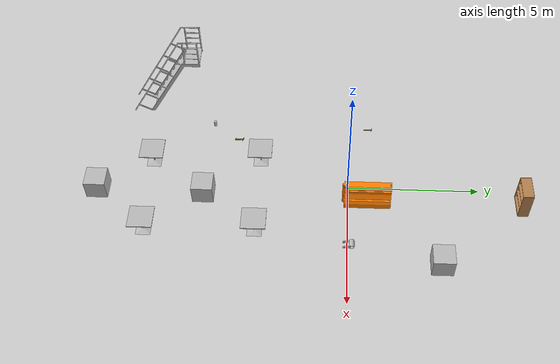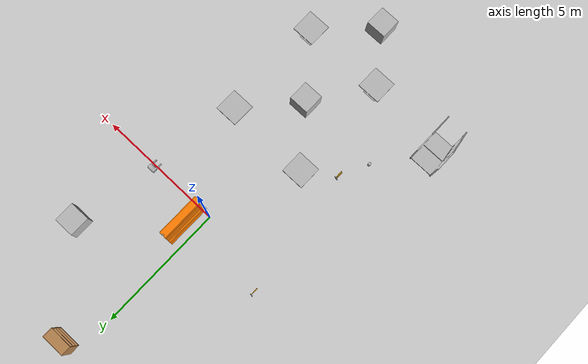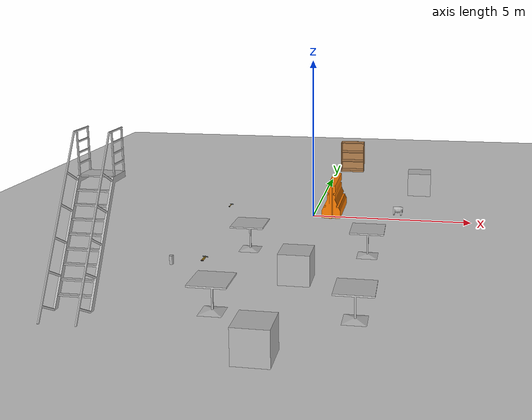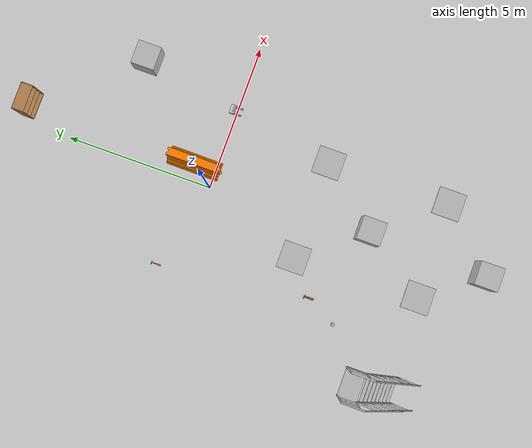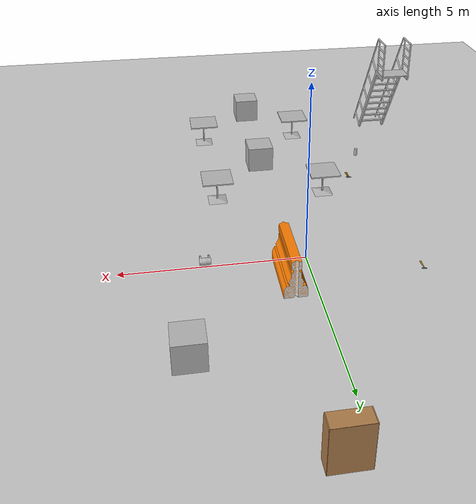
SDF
<sdf version="1.6">
 <world name="default">
  <light name="sun" type="directional">
   <pose>0 0 10 0 -0 0</pose>
   <diffuse>0.8 0.8 0.8 1</diffuse>
   <specular>0.1 0.1 0.1 1</specular>
   <attenuation>
    <range>1000</range>
    <constant>0.9</constant>
    <linear>0.01</linear>
    <quadratic>0.001</quadratic>
   </attenuation>
   <direction>-0.5 0.5 -1</direction>
  </light>
  <model name="ground_plane">
   <static>1</static>
   <link name="link">
    <collision name="collision">
     <geometry><plane><normal>0 0 1</normal><size>100 100</size></plane></geometry>
     <surface><friction><ode><mu>100</mu><mu2>50</mu2></ode></friction></surface>
    </collision>
    <visual name="visual">
     <cast_shadows>0</cast_shadows>
     <geometry><plane><normal>0 0 1</normal><size>100 100</size></plane></geometry>
     <material>
      <script><uri>file://media/materials/scripts/gazebo.material</uri><name>Gazebo/Grey</name></script>
     </material>
    </visual>
   </link>
  </model>
  <gravity>0 0 -9.8</gravity>
  <magnetic_field>6e-06 2.3e-05 -4.2e-05</magnetic_field>
  <atmosphere type="adiabatic"/>
  <physics name="default_physics" default="0" type="ode">
   <max_step_size>0.001</max_step_size>
   <real_time_factor>1</real_time_factor>
   <real_time_update_rate>1000</real_time_update_rate>
  </physics>
  <scene><ambient>0.4 0.4 0.4 1</ambient><background>0.7 0.7 0.7 1</background><shadows>1</shadows></scene>
  <spherical_coordinates>
   <surface_model>EARTH_WGS84</surface_model>
   <latitude_deg>0</latitude_deg>
   <longitude_deg>0</longitude_deg>
   <elevation>0</elevation>
   <heading_deg>0</heading_deg>
  </spherical_coordinates>
  <model name="cafe_table">
   <static>1</static>
   <link name="link">
    <collision name="surface">
     <pose>0 0 0.755 0 -0 0</pose>
     <geometry><box><size>0.913 0.913 0.04</size></box></geometry>
    </collision>
    <collision name="column">
     <pose>0 0 0.37 0 -0 0</pose>
     <geometry><box><size>0.042 0.042 0.74</size></box></geometry>
    </collision>
    <collision name="base">
     <pose>0 0 0.02 0 -0 0</pose>
     <geometry><box><size>0.56 0.56 0.04</size></box></geometry>
    </collision>
    <visual name="visual">
     <geometry><mesh><uri>model://cafe_table/meshes/cafe_table.dae</uri></mesh></geometry>
    </visual>
   </link>
   <pose>2.07942 -7.54445 0 0 -0 0</pose>
  </model>
  <model name="cafe_table_0">
   <static>1</static>
   <link name="link">
    <collision name="surface">
     <pose>0 0 0.755 0 -0 0</pose>
     <geometry><box><size>0.913 0.913 0.04</size></box></geometry>
    </collision>
    <collision name="column">
     <pose>0 0 0.37 0 -0 0</pose>
     <geometry><box><size>0.042 0.042 0.74</size></box></geometry>
    </collision>
    <collision name="base">
     <pose>0 0 0.02 0 -0 0</pose>
     <geometry><box><size>0.56 0.56 0.04</size></box></geometry>
    </collision>
    <visual name="visual">
     <geometry><mesh><uri>model://cafe_table/meshes/cafe_table.dae</uri></mesh></geometry>
    </visual>
   </link>
   <pose>-1.12178 -7.58031 0 0 -0 0</pose>
  </model>
  <model name="cafe_table_1">
   <static>1</static>
   <link name="link">
    <collision name="surface">
     <pose>0 0 0.755 0 -0 0</pose>
     <geometry><box><size>0.913 0.913 0.04</size></box></geometry>
    </collision>
    <collision name="column">
     <pose>0 0 0.37 0 -0 0</pose>
     <geometry><box><size>0.042 0.042 0.74</size></box></geometry>
    </collision>
    <collision name="base">
     <pose>0 0 0.02 0 -0 0</pose>
     <geometry><box><size>0.56 0.56 0.04</size></box></geometry>
    </collision>
    <visual name="visual">
     <geometry><mesh><uri>model://cafe_table/meshes/cafe_table.dae</uri></mesh></geometry>
    </visual>
   </link>
   <pose>2.0244 -3.43443 0 0 -0 0</pose>
  </model>
  <model name="cafe_table_2">
   <static>1</static>
   <link name="link">
    <collision name="surface">
     <pose>0 0 0.755 0 -0 0</pose>
     <geometry><box><size>0.913 0.913 0.04</size></box></geometry>
    </collision>
    <collision name="column">
     <pose>0 0 0.37 0 -0 0</pose>
     <geometry><box><size>0.042 0.042 0.74</size></box></geometry>
    </collision>
    <collision name="base">
     <pose>0 0 0.02 0 -0 0</pose>
     <geometry><box><size>0.56 0.56 0.04</size></box></geometry>
    </collision>
    <visual name="visual">
     <geometry><mesh><uri>model://cafe_table/meshes/cafe_table.dae</uri></mesh></geometry>
    </visual>
   </link>
   <pose>-1.26399 -3.39292 0 0 -0 0</pose>
  </model>
  <model name="number1">
   <pose>0.411726 -5.47513 0.4 0 -0 0</pose>
   <static>1</static>
   <link name="link">
    <visual name="visual">
     <geometry><mesh><uri>model://number1/meshes/number.dae</uri></mesh></geometry>
     <material>
      <script>
       <uri>model://number1/materials/scripts</uri>
       <uri>model://number1/materials/textures</uri>
       <name>Number/One</name>
      </script>
     </material>
    </visual>
   </link>
  </model>
  <model name="number2">
   <pose>0.3097 -9.52457 0.4 0 -0 0</pose>
   <static>1</static>
   <link name="link">
    <visual name="visual">
     <geometry><mesh><uri>model://number1/meshes/number.dae</uri></mesh></geometry>
     <material>
      <script>
       <uri>model://number2/materials/scripts</uri>
       <uri>model://number2/materials/textures</uri>
       <name>Number/Two</name>
      </script>
     </material>
    </visual>
   </link>
  </model>
  <model name="beer">
   <link name="link">
    <pose>0 0 0.115 0 -0 0</pose>
    <inertial>
     <mass>0.39</mass>
     <inertia><ixx>0.00058</ixx><ixy>0</ixy><ixz>0</ixz><iyy>0.00058</iyy><iyz>0</iyz><izz>0.00019</izz></inertia>
    </inertial>
    <collision name="collision">
     <geometry><cylinder><radius>0.055</radius><length>0.23</length></cylinder></geometry>
    </collision>
    <visual name="visual">
     <geometry><cylinder><radius>0.055</radius><length>0.23</length></cylinder></geometry>
     <material>
      <script>
       <uri>model://beer/materials/scripts</uri>
       <uri>model://beer/materials/textures</uri>
       <name>Beer/Diffuse</name>
      </script>
     </material>
    </visual>
   </link>
   <pose>-2.87544 -5.32991 0.189806 2.4e-05 0.00011 -2.5e-05</pose>
  </model>
  <model name="hammer">
   <static>1</static>
   <link name="link">
    <collision name="collision">
     <geometry><mesh><uri>model://hammer/meshes/hammer.dae</uri></mesh></geometry>
    </collision>
    <visual name="visual"><geometry><mesh><uri>model://hammer/meshes/hammer.dae</uri></mesh></geometry></visual>
   </link>
   <pose>-2.32473 -4.27363 0 0 -0 0</pose>
  </model>
  <model name="hammer_0">
   <static>1</static>
   <link name="link">
    <collision name="collision">
     <geometry><mesh><uri>model://hammer/meshes/hammer.dae</uri></mesh></geometry>
    </collision>
    <visual name="visual"><geometry><mesh><uri>model://hammer/meshes/hammer.dae</uri></mesh></geometry></visual>
   </link>
   <pose>-2.35764 -4.25325 0 0 -0 0</pose>
  </model>
  <model name="hammer_1">
   <static>1</static>
   <link name="link">
    <collision name="collision">
     <geometry><mesh><uri>model://hammer/meshes/hammer.dae</uri></mesh></geometry>
    </collision>
    <visual name="visual"><geometry><mesh><uri>model://hammer/meshes/hammer.dae</uri></mesh></geometry></visual>
   </link>
   <pose>-2.9954 0.894254 0 0 -0 0</pose>
  </model>
  <model name="arm_part">
   <link name="link">
    <inertial>
     <pose>0 -0.12223 0.101835 0 -0 0</pose>
     <mass>0.5</mass>
     <inertia>
      <ixx>0.00950655</ixx>
      <ixy>0</ixy>
      <ixz>0</ixz>
      <iyy>0.00543452</iyy>
      <iyz>0</iyz>
      <izz>0.0114843</izz>
     </inertia>
    </inertial>
    <collision name="collision">
     <pose>0 -0.12223 0.101835 0 -0 0</pose>
     <geometry><box><size>0.29824 0.43206 0.20367</size></box></geometry>
    </collision>
    <visual name="visual">
     <geometry><mesh><uri>model://arm_part/meshes/arm.dae</uri></mesh></geometry>
     <material>
      <script>
       <uri>model://arm_part/materials/scripts</uri>
       <uri>model://arm_part/materials/textures</uri>
       <name>ArmPart/Diffuse</name>
      </script>
     </material>
    </visual>
   </link>
   <pose>2.70928 0.168692 0.1898 0 -0 0</pose>
  </model>
  <model name="number3">
   <pose>3.35383 3.40189 0.4 0 -0 0</pose>
   <static>1</static>
   <link name="link">
    <visual name="visual">
     <geometry><mesh><uri>model://number1/meshes/number.dae</uri></mesh></geometry>
     <material>
      <script>
       <uri>model://number3/materials/scripts</uri>
       <uri>model://number3/materials/textures</uri>
       <name>Number/Three</name>
      </script>
     </material>
    </visual>
   </link>
  </model>
  <model name="bookshelf">
   <static>1</static>
   <link name="link">
    <inertial><mass>1</mass></inertial>
    <collision name="back">
     <pose>0 0.005 0.6 0 -0 0</pose>
     <geometry><box><size>0.9 0.01 1.2</size></box></geometry>
    </collision>
    <visual name="visual1">
     <pose>0 0.005 0.6 0 -0 0</pose>
     <geometry><box><size>0.9 0.01 1.2</size></box></geometry>
     <material>
      <script><uri>file://media/materials/scripts/gazebo.material</uri><name>Gazebo/Wood</name></script>
     </material>
    </visual>
    <collision name="left_side">
     <pose>0.45 -0.195 0.6 0 -0 0</pose>
     <geometry><box><size>0.02 0.4 1.2</size></box></geometry>
    </collision>
    <visual name="visual2">
     <pose>0.45 -0.195 0.6 0 -0 0</pose>
     <geometry><box><size>0.02 0.4 1.2</size></box></geometry>
     <material>
      <script><uri>file://media/materials/scripts/gazebo.material</uri><name>Gazebo/Wood</name></script>
     </material>
    </visual>
    <collision name="right_side">
     <pose>-0.45 -0.195 0.6 0 -0 0</pose>
     <geometry><box><size>0.02 0.4 1.2</size></box></geometry>
    </collision>
    <visual name="visual3">
     <pose>-0.45 -0.195 0.6 0 -0 0</pose>
     <geometry><box><size>0.02 0.4 1.2</size></box></geometry>
     <material>
      <script><uri>file://media/materials/scripts/gazebo.material</uri><name>Gazebo/Wood</name></script>
     </material>
    </visual>
    <collision name="bottom">
     <pose>0 -0.195 0.03 0 -0 0</pose>
     <geometry><box><size>0.88 0.4 0.06</size></box></geometry>
    </collision>
    <visual name="visual4">
     <pose>0 -0.195 0.03 0 -0 0</pose>
     <geometry><box><size>0.88 0.4 0.06</size></box></geometry>
     <material>
      <script><uri>file://media/materials/scripts/gazebo.material</uri><name>Gazebo/Wood</name></script>
     </material>
    </visual>
    <collision name="top">
     <pose>0 -0.195 1.19 0 -0 0</pose>
     <geometry><box><size>0.88 0.4 0.02</size></box></geometry>
    </collision>
    <visual name="visual5">
     <pose>0 -0.195 1.19 0 -0 0</pose>
     <geometry><box><size>0.88 0.4 0.02</size></box></geometry>
     <material>
      <script><uri>file://media/materials/scripts/gazebo.material</uri><name>Gazebo/Wood</name></script>
     </material>
    </visual>
    <collision name="low_shelf">
     <pose>0 -0.195 0.43 0 -0 0</pose>
     <geometry><box><size>0.88 0.4 0.02</size></box></geometry>
    </collision>
    <visual name="visual6">
     <pose>0 -0.195 0.43 0 -0 0</pose>
     <geometry><box><size>0.88 0.4 0.02</size></box></geometry>
     <material>
      <script><uri>file://media/materials/scripts/gazebo.material</uri><name>Gazebo/Wood</name></script>
     </material>
    </visual>
    <collision name="high_shelf">
     <pose>0 -0.195 0.8 0 -0 0</pose>
     <geometry><box><size>0.88 0.4 0.02</size></box></geometry>
    </collision>
    <visual name="visual7">
     <pose>0 -0.195 0.8 0 -0 0</pose>
     <geometry><box><size>0.88 0.4 0.02</size></box></geometry>
     <material>
      <script><uri>file://media/materials/scripts/gazebo.material</uri><name>Gazebo/Wood</name></script>
     </material>
    </visual>
   </link>
   <pose>0.630986 6.76743 0 0 -0 0</pose>
  </model>
  <model name="ladder">
   <static>1</static>
   <link name="link">
    <collision name="step0">
     <pose>0 -0.96703 0.286 0 -0 0</pose>
     <geometry><box><size>0.9 0.1016 0.0381</size></box></geometry>
    </collision>
    <collision name="step1">
     <pose>0 -0.79106 0.59054 0 -0 0</pose>
     <geometry><box><size>0.9 0.1016 0.0381</size></box></geometry>
    </collision>
    <collision name="step2">
     <pose>0 -0.61509 0.89508 0 -0 0</pose>
     <geometry><box><size>0.9 0.1016 0.0381</size></box></geometry>
    </collision>
    <collision name="step3">
     <pose>0 -0.43912 1.19962 0 -0 0</pose>
     <geometry><box><size>0.9 0.1016 0.0381</size></box></geometry>
    </collision>
    <collision name="step4">
     <pose>0 -0.26315 1.50416 0 -0 0</pose>
     <geometry><box><size>0.9 0.1016 0.0381</size></box></geometry>
    </collision>
    <collision name="step5">
     <pose>0 -0.08718 1.8087 0 -0 0</pose>
     <geometry><box><size>0.9 0.1016 0.0381</size></box></geometry>
    </collision>
    <collision name="step6">
     <pose>0 0.08879 2.11324 0 -0 0</pose>
     <geometry><box><size>0.9 0.1016 0.0381</size></box></geometry>
    </collision>
    <collision name="step7">
     <pose>0 0.26476 2.41778 0 -0 0</pose>
     <geometry><box><size>0.9 0.1016 0.0381</size></box></geometry>
    </collision>
    <collision name="landing">
     <pose>0 0.73039 2.72432 0 -0 0</pose>
     <geometry><box><size>0.9 0.6096 0.0381</size></box></geometry>
    </collision>
    <collision name="left_side_wall">
     <pose>-0.43217 -0.37451 1.3386 1.0472 -0 0</pose>
     <geometry><box><size>0.0508 3.16758 0.13</size></box></geometry>
    </collision>
    <collision name="left_side_landing_wall">
     <pose>-0.43217 0.69819 2.667 0 -0 0</pose>
     <geometry><box><size>0.0508 0.67401 0.1524</size></box></geometry>
    </collision>
    <collision name="left_railing_landing_3">
     <pose>-0.433355 0.66933 3.81 1.5707 -0 0</pose>
     <geometry><cylinder><radius>0.02413</radius><length>0.73172</length></cylinder></geometry>
    </collision>
    <collision name="left_railing_landing_2">
     <pose>-0.433355 0.73166 3.5433 1.5707 -0 0</pose>
     <geometry><cylinder><radius>0.02413</radius><length>0.5588</length></cylinder></geometry>
    </collision>
    <collision name="left_railing_landing_1">
     <pose>-0.433355 0.73166 3.2766 1.5707 -0 0</pose>
     <geometry><cylinder><radius>0.02413</radius><length>0.5588</length></cylinder></geometry>
    </collision>
    <collision name="left_railing_landing_0">
     <pose>-0.433355 0.73166 3.0099 1.5707 -0 0</pose>
     <geometry><cylinder><radius>0.02413</radius><length>0.5588</length></cylinder></geometry>
    </collision>
    <collision name="left_railing_landing_upright_back">
     <pose>-0.433355 1.01088 3.2766 0 -0 0</pose>
     <geometry><cylinder><radius>0.02413</radius><length>1.0668</length></cylinder></geometry>
    </collision>
    <collision name="left_railing_landing_upright_front">
     <pose>-0.433355 0.45208 3.2766 0 -0 0</pose>
     <geometry><cylinder><radius>0.02413</radius><length>1.0668</length></cylinder></geometry>
    </collision>
    <collision name="left_railing_upright_4">
     <pose>-0.433355 0.0699 2.80986 1.03414 -0 0</pose>
     <geometry><cylinder><radius>0.02413</radius><length>0.57</length></cylinder></geometry>
    </collision>
    <collision name="left_railing_upright_3">
     <pose>-0.433355 -0.31006 2.15169 1.03414 -0 0</pose>
     <geometry><cylinder><radius>0.02413</radius><length>0.57</length></cylinder></geometry>
    </collision>
    <collision name="left_railing_upright_2">
     <pose>-0.433355 -0.6911 1.49172 1.03414 -0 0</pose>
     <geometry><cylinder><radius>0.02413</radius><length>0.57</length></cylinder></geometry>
    </collision>
    <collision name="left_railing_upright_1">
     <pose>-0.433355 -1.0732 0.82995 1.03414 -0 0</pose>
     <geometry><cylinder><radius>0.02413</radius><length>0.57</length></cylinder></geometry>
    </collision>
    <collision name="left_railing_upright_0">
     <pose>-0.433355 -1.45316 0.17179 1.03414 -0 0</pose>
     <geometry><cylinder><radius>0.02413</radius><length>0.57</length></cylinder></geometry>
    </collision>
    <collision name="left_railing_long">
     <pose>-0.433355 -0.781 1.9068 -0.523503 0 0</pose>
     <geometry><cylinder><radius>0.02413</radius><length>4.42295</length></cylinder></geometry>
    </collision>
    <collision name="right_side_wall">
     <pose>0.43217 -0.37451 1.3386 1.0472 -0 0</pose>
     <geometry><box><size>0.0508 3.16758 0.13</size></box></geometry>
    </collision>
    <collision name="right_side_landing_wall">
     <pose>0.43217 0.69819 2.667 0 -0 0</pose>
     <geometry><box><size>0.0508 0.67401 0.1524</size></box></geometry>
    </collision>
    <collision name="right_railing_landing_3">
     <pose>0.433355 0.66933 3.81 1.5707 -0 0</pose>
     <geometry><cylinder><radius>0.02413</radius><length>0.73172</length></cylinder></geometry>
    </collision>
    <collision name="right_railing_landing_2">
     <pose>0.433355 0.73166 3.5433 1.5707 -0 0</pose>
     <geometry><cylinder><radius>0.02413</radius><length>0.5588</length></cylinder></geometry>
    </collision>
    <collision name="right_railing_landing_1">
     <pose>0.433355 0.73166 3.2766 1.5707 -0 0</pose>
     <geometry><cylinder><radius>0.02413</radius><length>0.5588</length></cylinder></geometry>
    </collision>
    <collision name="right_railing_landing_0">
     <pose>0.433355 0.73166 3.0099 1.5707 -0 0</pose>
     <geometry><cylinder><radius>0.02413</radius><length>0.5588</length></cylinder></geometry>
    </collision>
    <collision name="right_railing_landing_upright_back">
     <pose>0.433355 1.01088 3.2766 0 -0 0</pose>
     <geometry><cylinder><radius>0.02413</radius><length>1.0668</length></cylinder></geometry>
    </collision>
    <collision name="right_railing_landing_upright_front">
     <pose>0.433355 0.45208 3.2766 0 -0 0</pose>
     <geometry><cylinder><radius>0.02413</radius><length>1.0668</length></cylinder></geometry>
    </collision>
    <collision name="right_railing_upright_4">
     <pose>0.433355 0.0699 2.80986 1.03414 -0 0</pose>
     <geometry><cylinder><radius>0.02413</radius><length>0.57</length></cylinder></geometry>
    </collision>
    <collision name="right_railing_upright_3">
     <pose>0.433355 -0.31006 2.15169 1.03414 -0 0</pose>
     <geometry><cylinder><radius>0.02413</radius><length>0.57</length></cylinder></geometry>
    </collision>
    <collision name="right_railing_upright_2">
     <pose>0.433355 -0.6911 1.49172 1.03414 -0 0</pose>
     <geometry><cylinder><radius>0.02413</radius><length>0.57</length></cylinder></geometry>
    </collision>
    <collision name="right_railing_upright_1">
     <pose>0.433355 -1.0732 0.82995 1.03414 -0 0</pose>
     <geometry><cylinder><radius>0.02413</radius><length>0.57</length></cylinder></geometry>
    </collision>
    <collision name="right_railing_upright_0">
     <pose>0.433355 -1.45316 0.17179 1.03414 -0 0</pose>
     <geometry><cylinder><radius>0.02413</radius><length>0.57</length></cylinder></geometry>
    </collision>
    <collision name="right_railing_long">
     <pose>0.433355 -0.781 1.9068 -0.523503 0 0</pose>
     <geometry><cylinder><radius>0.02413</radius><length>4.42295</length></cylinder></geometry>
    </collision>
    <visual name="visual">
     <geometry><mesh><uri>model://drc_practice_ladder/meshes/ladder.dae</uri></mesh></geometry>
    </visual>
   </link>
   <pose>-4.23079 -6.87069 0 0 -0 0</pose>
  </model>
  <model name="drc_practice_organge_jersey_barrier">
   <static>1</static>
   <link name="link">
    <visual name="visual">
     <geometry>
      <mesh><uri>model://drc_practice_orange_jersey_barrier/meshes/jersey_barrier.dae</uri></mesh>
     </geometry>
    </visual>
    <collision name="collision">
     <geometry>
      <mesh><uri>model://drc_practice_orange_jersey_barrier/meshes/jersey_barrier.dae</uri></mesh>
     </geometry>
    </collision>
   </link>
   <pose>0.593735 0.742515 0 0 -0 0</pose>
  </model>
 </world>
</sdf>
